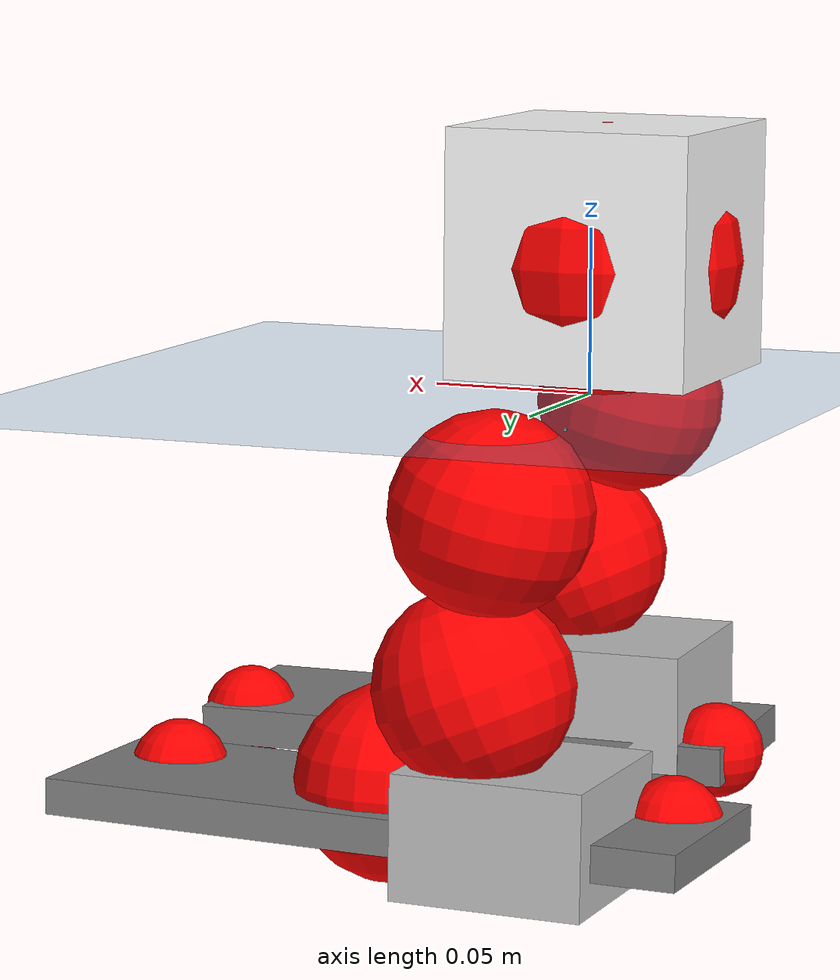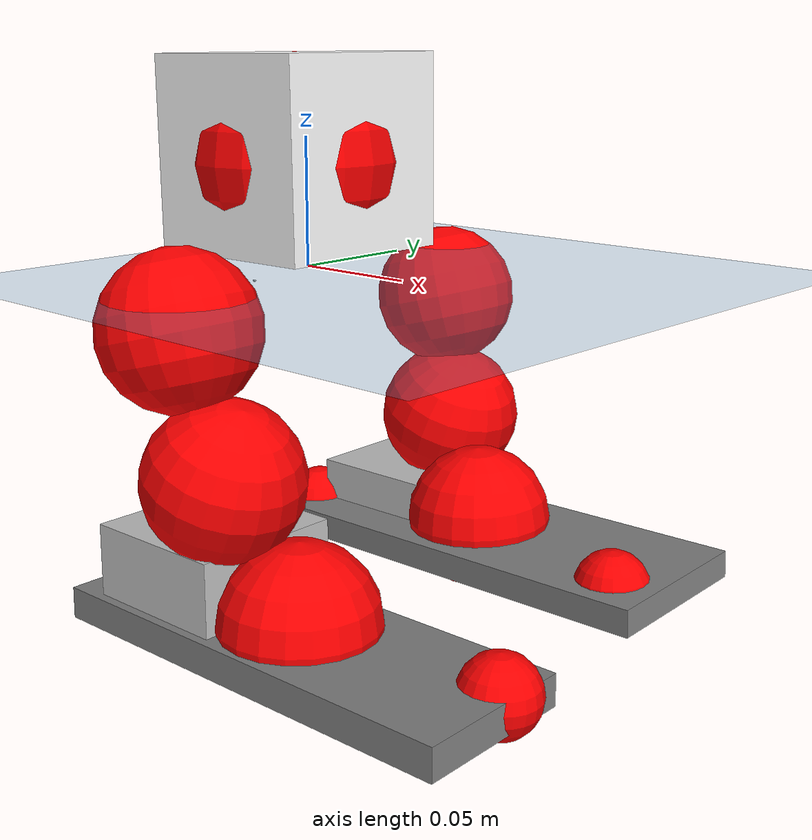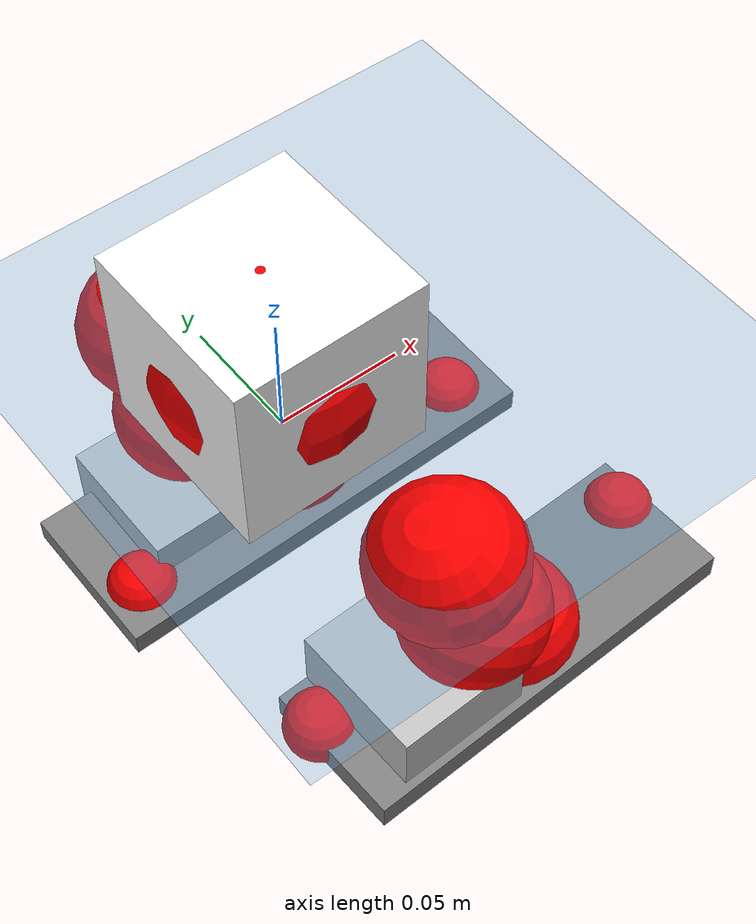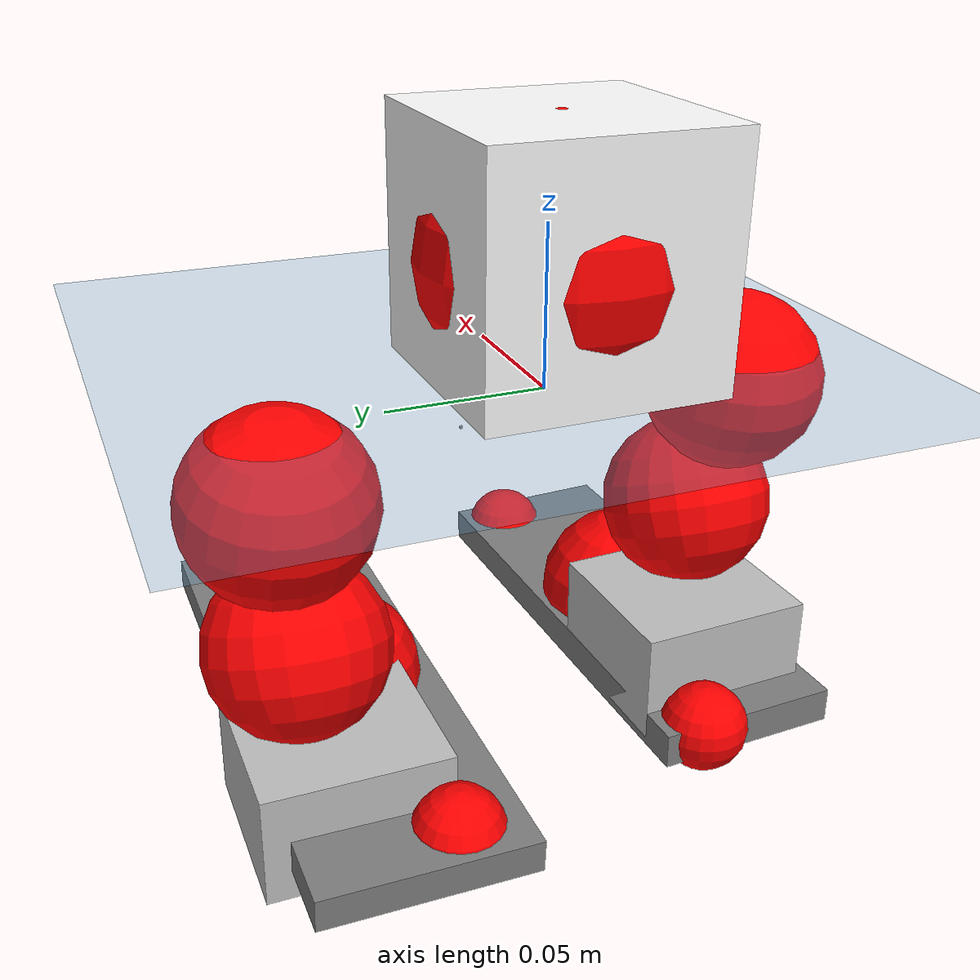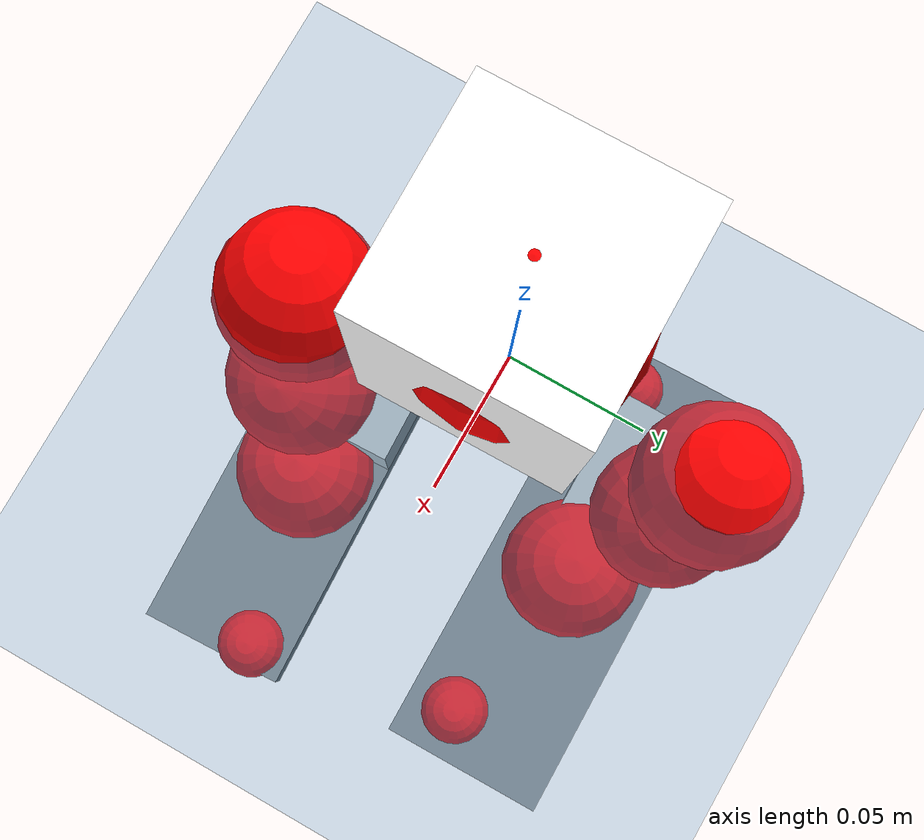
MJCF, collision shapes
<mujoco model="pi_12dof_release_v1">
  <compiler angle="radian" assetdir="assets" balanceinertia="true" inertiafromgeom="false"/>

  <option timestep="0.005" density="1.2" viscosity="2e-05"/>

  <size nkey="1"/>

  <visual>
    <quality shadowsize="8192"/>
    <map shadowclip="0.5"/>
  </visual>

  <default>
    <default class="/">
      <joint armature="0.01" damping="0.01" frictionloss="0.01"/>
      <geom contype="0" conaffinity="0" group="1" solref="-1000 -80"/>
      <site size="0.01 0.005 0.005" group="5"/>
      <general forcelimited="true" biastype="affine" gainprm="20" biasprm="0 -20 -0.5"/>
      <default class="foot">
        <geom size="0.0845 0.036 0.005" type="box" condim="6" group="4" priority="1" friction="0.9 0.2 0.2" solimp="0.015 1 0.005"/>
      </default>
      <default class="reward_collision_sphere">
        <geom group="5" rgba="1 0 0 1"/>
      </default>
    </default>
  </default>

  <asset>
    <texture type="skybox" colorspace="auto" name="//unnamed_texture_0" builtin="gradient" rgb1="0.95 0.95 0.95" rgb2="0.95 0.95 0.95" width="100" height="600"/>
    <texture type="2d" colorspace="auto" name="texplane" builtin="checker" rgb1="0.345 0.575 0.748" rgb2="0.345 0.575 0.748" markrgb="1 1 1" width="512" height="512"/>
    <material name="MatPlane" class="/" texture="texplane" texuniform="true" texrepeat="2 2" specular="0.9"/>
    <mesh name="baselink_1" class="/" file="baselink_1.STL"/>
    <mesh name="r_hip_pitch_link" class="/" file="r_hip_pitch_link.STL"/>
    <mesh name="r_hip_roll_link" class="/" file="r_hip_roll_link.STL"/>
    <mesh name="r_thigh_link" class="/" file="r_thigh_link.STL"/>
    <mesh name="r_calf_link" class="/" file="r_calf_link.STL"/>
    <mesh name="r_ankle_pitch_link" class="/" file="r_ankle_pitch_link.STL"/>
    <mesh name="r_ankle_roll_link" class="/" file="r_ankle_roll_link.STL"/>
    <mesh name="l_hip_pitch_link" class="/" file="l_hip_pitch_link.STL"/>
    <mesh name="l_hip_roll_link" class="/" file="l_hip_roll_link.STL"/>
    <mesh name="l_thigh_link" class="/" file="l_thigh_link.STL"/>
    <mesh name="l_calf_link" class="/" file="l_calf_link.STL"/>
    <mesh name="l_ankle_pitch_link" class="/" file="l_ankle_pitch_link.STL"/>
    <mesh name="l_ankle_roll_link" class="/" file="l_ankle_roll_link.STL"/>
  </asset>

  <worldbody>
    <geom name="floor" class="/" size="100 100 0.125" type="plane" group="0" material="MatPlane"/>
    <light name="toplight_shadow" class="/" pos="0 0 5" dir="0.0990148 0.0990148 -0.990148" type="directional" ambient="0.04 0.04 0.04" diffuse="0.55 0.55 0.55" specular="0.12 0.12 0.12"/>
    <light name="toplight_fill" class="/" pos="0 0 5" dir="0.0990148 0.0990148 -0.990148" type="directional" castshadow="false" ambient="0.04 0.04 0.04" diffuse="0.3 0.3 0.3" specular="0.08 0.08 0.08"/>
    <body name="trunk" pos="-0.00423594 -0.000822257 0.0166443" quat="0.999969 0.00161385 -0.00374363 0.00666349">
      <inertial pos="-0.000538639 -0.0138234 0.0171158" quat="0.685837 -0.0423083 0.0640801 0.723693" mass="0.813029" diaginertia="0.0185173 0.00137618 1.55434e-05"/>
      <joint name="//unnamed_joint_0" type="free"/>
      <geom name="//unnamed_geom_1" class="/" type="mesh" density="0" rgba="1 1 1 1" mesh="baselink_1"/>
      <geom name="//unnamed_geom_2" class="/" size="0.0373048 0.0373048 0.0373048" pos="0 0 0.0276357" type="box" rgba="1 1 1 1"/>
      <geom name="//unnamed_geom_3" class="reward_collision_sphere" size="0.0410353" pos="0 0 0.0241812"/>
      <site name="imu" class="/" pos="-0.0268437 -0.0534725 0.0660313" size="0.00746096"/>
      <camera name="track" class="/" pos="0 -1.42298 0" quat="0.707107 0.707107 0 0" mode="trackcom"/>
      <camera name="ego_camera" class="/" pos="0.0886016 0 0.0621802" quat="-0.5 -0.5 0.5 0.5"/>
      <body name="r_hip_pitch_link" pos="0.000472947 -0.0242268 -0.0197342" quat="0.992162 -0.00104312 -0.124949 0.000881286">
        <inertial pos="0.0161465 -0.0398043 0.0160923" quat="-0.0058974 0.692781 0.0505172 0.719352" mass="0.173383" diaginertia="0.000238133 2.19677e-05 4.58584e-07"/>
        <joint name="r_hip_pitch_joint" class="/" pos="0 0 0" axis="0.00290839 -0.999176 0.0404794" range="-1.85569 1.3788" armature="0.00635127" damping="0.00427807" frictionloss="0.00563772"/>
        <geom name="//unnamed_geom_4" class="/" type="mesh" density="0" rgba="0.75294 0.75294 0.75294 1" mesh="r_hip_pitch_link"/>
        <geom name="//unnamed_geom_5" class="/" size="0.000373048 0.000373048 0.000373048" type="box" rgba="0.75294 0.75294 0.75294 1"/>
        <body name="r_hip_roll_link" pos="0.0138218 -0.0493806 -0.0130207" quat="1 -0.000196886 0.000348661 -0.000118158">
          <inertial pos="-0.000698164 -0.000870433 -0.0181947" quat="0.728678 -0.063363 -0.0712445 0.678188" mass="0.176292" diaginertia="0.000844934 6.02944e-05 8.73179e-07"/>
          <joint name="r_hip_roll_joint" class="/" pos="0 0 0" axis="-0.998093 -0.00785049 -0.0612242" stiffness="0.00789649" range="-0.113291 0.493687" armature="0.0137554" damping="0.00644541" frictionloss="0.00335791"/>
          <geom name="//unnamed_geom_6" class="/" type="mesh" density="0" rgba="0.75294 0.75294 0.75294 1" mesh="r_hip_roll_link"/>
          <geom name="//unnamed_geom_7" class="/" size="0.000373048 0.000373048 0.000373048" type="box" rgba="0.75294 0.75294 0.75294 1"/>
          <geom name="//unnamed_geom_8" class="reward_collision_sphere" size="0.0298439"/>
          <body name="r_thigh_link" pos="-0.00677447 0.00155284 -0.0237406" quat="1 -7.72599e-06 -1.4562e-05 7.4622e-05">
            <inertial pos="0.0178061 0.016791 -0.016369" quat="0.732861 0.680286 -0.00504268 -0.0100254" mass="0.0474709" diaginertia="0.000352514 1.693e-05 2.96326e-07"/>
            <joint name="r_thigh_joint" class="/" pos="0 0 0" axis="0.022333 -0.00891532 -0.999711" range="-0.108203 0.314147" armature="0.0130357" damping="0" frictionloss="0.00932598"/>
            <geom name="//unnamed_geom_9" class="/" type="mesh" density="0" rgba="0.75294 0.75294 0.75294 1" mesh="r_thigh_link"/>
            <geom name="//unnamed_geom_10" class="/" size="0.000373048 0.000373048 0.000373048" type="box" rgba="0.75294 0.75294 0.75294 1"/>
            <body name="r_calf_link" pos="0.0103901 0.00146564 -0.0307364" quat="0.947389 -0.00268755 0.319972 0.00806421">
              <inertial pos="0.00799766 -0.0012315 -0.0232604" quat="0.996823 0.00392756 0.0275548 -0.0746251" mass="0.290652" diaginertia="0.00826328 0.000710922 8.83239e-07"/>
              <joint name="r_calf_joint" class="/" pos="0 0 0" axis="0.0223274 -0.999458 -0.0242091" stiffness="0.0352548" range="-1.62638 0.447724" armature="0.00740631" damping="0.00363958" frictionloss="0.00614754"/>
              <geom name="//unnamed_geom_11" class="/" type="mesh" density="0" rgba="0.75294 0.75294 0.75294 1" mesh="r_calf_link"/>
              <geom name="//unnamed_geom_12" class="/" size="0.000373048 0.000373048 0.000373048" type="box" rgba="0.75294 0.75294 0.75294 1"/>
              <geom name="//unnamed_geom_13" class="reward_collision_sphere" size="0.0298439"/>
              <body name="r_ankle_pitch_link" pos="-0.00149606 0.0107295 -0.0452997" quat="0.980873 -0.00109608 -0.194641 0.00152058">
                <inertial pos="0.0149624 0.00102625 0.0073835" quat="-0.00558837 0.713894 0.02915 0.699624" mass="0.0610386" diaginertia="0.000685701 4.72222e-05 5.22593e-07"/>
                <joint name="r_ankle_pitch_joint" class="/" pos="0 0 0" axis="-0.0129041 -0.998398 -0.0550829" range="-1.09343 0.516035" armature="0.0104537" damping="0" frictionloss="0.00566933"/>
                <geom name="//unnamed_geom_14" class="/" type="mesh" density="0" rgba="0.75294 0.75294 0.75294 1" mesh="r_ankle_pitch_link"/>
                <geom name="//unnamed_geom_15" class="/" size="0.0290978 0.0298439 0.0186524" type="box" rgba="0.75294 0.75294 0.75294 1"/>
                <body name="r_ankle_roll_link" pos="0.105262 -0.00130659 0.000126356" quat="0.999996 -0.00214109 -0.000132162 0.00183964">
                  <inertial pos="-0.0217085 0.0154216 -0.018402" quat="0.594613 0.352847 0.449005 0.565975" mass="0.272421" diaginertia="0.00321946 0.000183201 1.89674e-06"/>
                  <joint name="r_ankle_roll_joint" class="/" pos="0 0 0" axis="-0.99994 -0.000348548 0.0109456" range="0.200991 -0.0637028" armature="0.0128369" damping="0.0487134" frictionloss="0.0133395"/>
                  <geom name="//unnamed_geom_16" class="/" type="mesh" density="0" rgba="0.75294 0.75294 0.75294 1" mesh="r_ankle_roll_link"/>
                  <geom name="//unnamed_geom_17" class="/" type="mesh" rgba="0.75294 0.75294 0.75294 1" mesh="r_ankle_roll_link"/>
                  <geom name="right_foot" class="foot" size="0.0878525 0.0316319 0.00601609" pos="-0.0602491 0 -0.0151996"/>
                  <geom name="//unnamed_geom_19" class="reward_collision_sphere" size="0.0298439" pos="-0.0590678 0 -0.00690892"/>
                  <geom name="//unnamed_geom_20" class="reward_collision_sphere" size="0.0149219" pos="0.0177203 0.0142298 -0.0138178"/>
                  <geom name="//unnamed_geom_21" class="reward_collision_sphere" size="0.0149219" pos="-0.141763 0.0142298 -0.0138178"/>
                  <site name="right_foot" class="foot" pos="-0.0602491 0 -0.0151996" size="0.00746096"/>
                </body>
              </body>
            </body>
          </body>
        </body>
      </body>
      <body name="l_hip_pitch_link" pos="0.00170658 0.0285121 -0.0235818" quat="0.992245 -0.00177093 -0.124244 0.00311025">
        <inertial pos="0.00818213 0.053817 0.0166286" quat="-0.0768688 0.714108 0.0365007 0.694844" mass="0.192296" diaginertia="0.000374254 1.94237e-05 6.52993e-07"/>
        <joint name="l_hip_pitch_joint" class="/" pos="0 0 0" axis="0.0618004 0.997405 0.0369448" stiffness="0.0625921" range="-0.919546 1.95081" armature="0.00778662" damping="0.0714028" frictionloss="0.00372074"/>
        <geom name="//unnamed_geom_22" class="/" type="mesh" density="0" rgba="0.75294 0.75294 0.75294 1" mesh="l_hip_pitch_link"/>
        <geom name="//unnamed_geom_23" class="/" size="0.000373048 0.000373048 0.000373048" type="box" rgba="0.75294 0.75294 0.75294 1"/>
        <body name="l_hip_roll_link" pos="-0.0017497 0.0548132 -0.0162777" quat="0.99998 0.00408969 -0.00290081 -0.00375401">
          <inertial pos="-0.0198668 0.0127365 -0.00376055" quat="0.69914 -0.0764805 -0.076083 0.7068" mass="0.129388" diaginertia="0.000478712 3.70506e-05 4.17212e-07"/>
          <joint name="l_hip_roll_joint" class="/" pos="0 0 0" axis="-0.999997 0.0015808 -0.00202635" stiffness="0.00663116" range="-0.488773 0.33089" armature="0.0114894" damping="0" frictionloss="0.00730021"/>
          <geom name="//unnamed_geom_24" class="/" type="mesh" density="0" rgba="0.75294 0.75294 0.75294 1" mesh="l_hip_roll_link"/>
          <geom name="//unnamed_geom_25" class="/" size="0.000373048 0.000373048 0.000373048" type="box" rgba="0.75294 0.75294 0.75294 1"/>
          <geom name="//unnamed_geom_26" class="reward_collision_sphere" size="0.0298439"/>
          <body name="l_thigh_link" pos="0.0109112 -0.00139339 -0.0127222" quat="0.999978 0.00308352 0.00249475 -0.00530942">
            <inertial pos="0.0162906 -0.0128775 0.000477817" quat="0.661034 0.746711 -0.0284184 -0.0681786" mass="0.0522069" diaginertia="0.000331523 2.23656e-05 2.92643e-07"/>
            <joint name="l_thigh_joint" class="/" pos="0 0 0" axis="0.00214522 0.00543969 -0.999983" stiffness="0.00666012" range="-0.557417 0.38426" armature="0.0104924" damping="0.0363257" frictionloss="0.00109623"/>
            <geom name="//unnamed_geom_27" class="/" type="mesh" density="0" rgba="0.75294 0.75294 0.75294 1" mesh="l_thigh_link"/>
            <geom name="//unnamed_geom_28" class="/" size="0.000373048 0.000373048 0.000373048" type="box" rgba="0.75294 0.75294 0.75294 1"/>
            <body name="l_calf_link" pos="-0.0176041 -0.00339971 -0.0391234" quat="0.947653 -0.000159856 0.319302 4.46879e-05">
              <inertial pos="0.0139155 0.0136507 -0.0258216" quat="0.996708 0.075671 -0.0128576 0.026103" mass="0.327431" diaginertia="0.00513832 0.000493589 5.94347e-07"/>
              <joint name="l_calf_joint" class="/" pos="0 0 0" axis="-0.047863 0.99869 0.0180884" stiffness="0.0697676" range="-0.359002 1.34218" armature="0.00539841" damping="0.0653695" frictionloss="0.00317876"/>
              <geom name="//unnamed_geom_29" class="/" type="mesh" density="0" rgba="0.75294 0.75294 0.75294 1" mesh="l_calf_link"/>
              <geom name="//unnamed_geom_30" class="/" size="0.000373048 0.000373048 0.000373048" type="box" rgba="0.75294 0.75294 0.75294 1"/>
              <geom name="//unnamed_geom_31" class="reward_collision_sphere" size="0.0298439"/>
              <body name="l_ankle_pitch_link" pos="0.0041078 -0.00705082 -0.0422527" quat="0.979856 -0.0015405 -0.199697 0.00100625">
                <inertial pos="-0.00317989 0.00952411 0.0149424" quat="-0.0146299 0.67896 0.0445902 0.732674" mass="0.0967886" diaginertia="0.000632927 4.47553e-05 5.93693e-07"/>
                <joint name="l_ankle_pitch_joint" class="/" pos="0 0 0" axis="-0.00165457 0.999993 -0.00345258" range="-0.271959 1.2452" armature="0.0112579" damping="0.0904726" frictionloss="0.0124376"/>
                <geom name="//unnamed_geom_32" class="/" type="mesh" density="0" rgba="0.75294 0.75294 0.75294 1" mesh="l_ankle_pitch_link"/>
                <geom name="//unnamed_geom_33" class="/" size="0.0290978 0.0298439 0.0186524" type="box" rgba="0.75294 0.75294 0.75294 1"/>
                <body name="l_ankle_roll_link" pos="0.10465 -0.0129294 0.0125921" quat="0.99996 0.00789311 -0.00372933 0.00172706">
                  <inertial pos="-0.0355192 -0.000228111 -0.00541045" quat="0.540917 0.461235 0.376311 0.59419" mass="0.198475" diaginertia="0.00238389 0.000141909 1.43804e-06"/>
                  <joint name="l_ankle_roll_joint" class="/" pos="0 0 0" axis="-0.999991 0.00418325 -0.000310387" stiffness="0.0292644" range="-0.2497 0.505256" armature="0.00847573" damping="0.0649134" frictionloss="0.0110311"/>
                  <geom name="//unnamed_geom_34" class="/" type="mesh" density="0" rgba="0.75294 0.75294 0.75294 1" mesh="l_ankle_roll_link"/>
                  <geom name="//unnamed_geom_35" class="/" type="mesh" rgba="0.75294 0.75294 0.75294 1" mesh="l_ankle_roll_link"/>
                  <geom name="left_foot" class="foot" size="0.098581 0.0348543 0.00546946" pos="-0.0602491 0 -0.0151996"/>
                  <geom name="//unnamed_geom_37" class="reward_collision_sphere" size="0.0298439" pos="-0.0590678 0 -0.00690892"/>
                  <geom name="//unnamed_geom_38" class="reward_collision_sphere" size="0.0149219" pos="0.0177203 -0.0142298 -0.0138178"/>
                  <geom name="//unnamed_geom_39" class="reward_collision_sphere" size="0.0149219" pos="-0.141763 -0.0142298 -0.0138178"/>
                  <site name="left_foot" class="foot" pos="-0.0602491 0 -0.0151996" size="0.00746096"/>
                </body>
              </body>
            </body>
          </body>
        </body>
      </body>
    </body>
  </worldbody>

  <contact>
    <pair class="/" geom1="floor" geom2="right_foot" name="//unnamed_contact_1"/>
    <pair class="/" geom1="floor" geom2="left_foot" name="//unnamed_contact_0"/>
  </contact>

  <actuator>
    <general name="r_hip_pitch_joint" class="/" joint="r_hip_pitch_joint" forcerange="-7.18095 7.18095" gainprm="21.5184" biasprm="0 -21.5184 -0.512502"/>
    <general name="r_hip_roll_joint" class="/" joint="r_hip_roll_joint" forcerange="-25.8206 25.8206" gainprm="21.5184" biasprm="0 -21.5184 -0.512502"/>
    <general name="r_thigh_joint" class="/" joint="r_thigh_joint" forcerange="-16.1902 16.1902" gainprm="21.5184" biasprm="0 -21.5184 -0.512502"/>
    <general name="r_calf_joint" class="/" joint="r_calf_joint" forcerange="-5.2417 5.2417" gainprm="21.5184" biasprm="0 -21.5184 -0.512502"/>
    <general name="r_ankle_pitch_joint" class="/" joint="r_ankle_pitch_joint" forcerange="-20.9028 20.9028" gainprm="21.5184" biasprm="0 -21.5184 -0.512502"/>
    <general name="r_ankle_roll_joint" class="/" joint="r_ankle_roll_joint" forcerange="-25.7342 25.7342" gainprm="21.5184" biasprm="0 -21.5184 -0.512502"/>
    <general name="l_hip_pitch_joint" class="/" joint="l_hip_pitch_joint" forcerange="-16.6193 16.6193" gainprm="21.5184" biasprm="0 -21.5184 -0.512502"/>
    <general name="l_hip_roll_joint" class="/" joint="l_hip_roll_joint" forcerange="-12.6014 12.6014" gainprm="21.5184" biasprm="0 -21.5184 -0.512502"/>
    <general name="l_thigh_joint" class="/" joint="l_thigh_joint" forcerange="-9.49711 9.49711" gainprm="21.5184" biasprm="0 -21.5184 -0.512502"/>
    <general name="l_calf_joint" class="/" joint="l_calf_joint" forcerange="-18.552 18.552" gainprm="21.5184" biasprm="0 -21.5184 -0.512502"/>
    <general name="l_ankle_pitch_joint" class="/" joint="l_ankle_pitch_joint" forcerange="-9.67563 9.67563" gainprm="21.5184" biasprm="0 -21.5184 -0.512502"/>
    <general name="l_ankle_roll_joint" class="/" joint="l_ankle_roll_joint" forcerange="-16.3346 16.3346" gainprm="21.5184" biasprm="0 -21.5184 -0.512502"/>
  </actuator>

  <sensor>
    <gyro site="imu" name="imu_angular_velocity"/>
    <velocimeter site="imu" name="imu_linear_velocity"/>
    <framelinvel objtype="site" objname="left_foot" name="left_foot_global_linear_velocity"/>
    <framelinvel objtype="site" objname="right_foot" name="right_foot_global_linear_velocity"/>
  </sensor>

  <keyframe>
    <key name="home" qpos="0 0 0.291 1 0 0 0 0.4 0 0 -0.8 0.4 0 -0.4 0 0 0.8 -0.4 0"/>
  </keyframe>
</mujoco>
